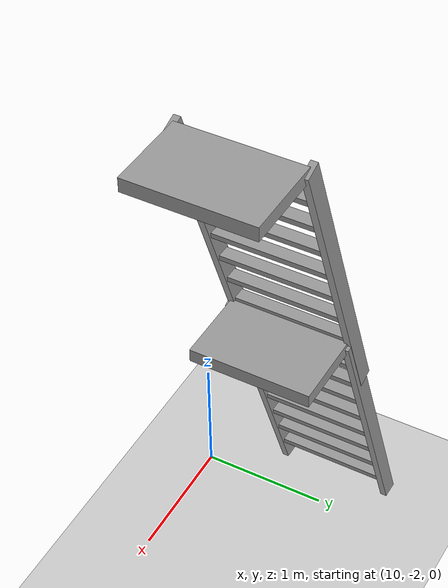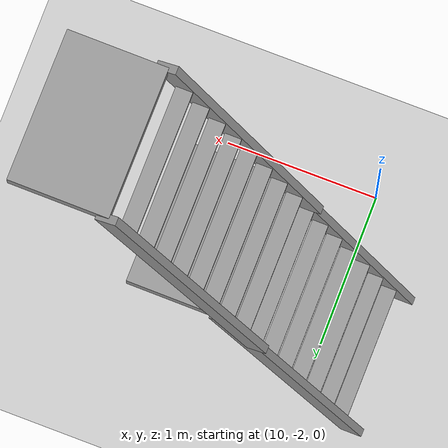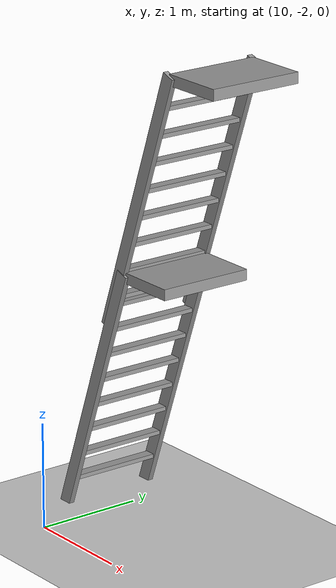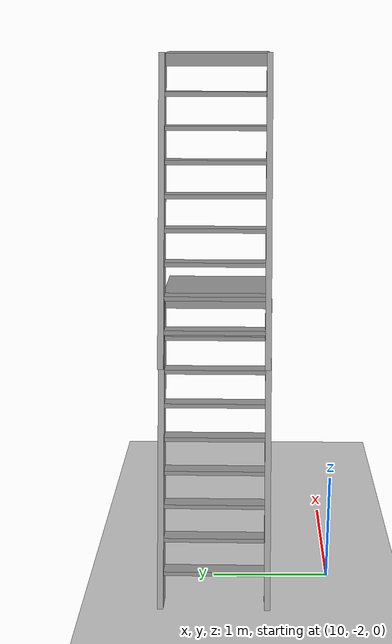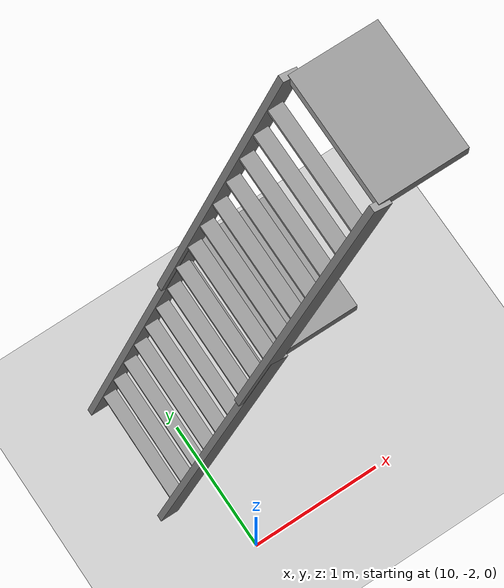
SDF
<sdf version="1.7">
 <world name="default">
  <model name="ground_plane">
   <static>1</static>
   <link name="link">
    <collision name="collision">
     <geometry><plane><normal>0 0 1</normal><size>100 100</size></plane></geometry>
     <surface>
      <contact><collide_bitmask>65535</collide_bitmask></contact>
      <friction><ode><mu>100</mu><mu2>50</mu2></ode></friction>
     </surface>
    </collision>
    <visual name="visual">
     <cast_shadows>0</cast_shadows>
     <geometry><plane><normal>0 0 1</normal><size>100 100</size></plane></geometry>
     <material>
      <script><uri>file://media/materials/scripts/gazebo.material</uri><name>Gazebo/Grey</name></script>
     </material>
    </visual>
   </link>
  </model>
  <model name="ladder_70deg_0rails_clone_0_clone">
   <static>1</static>
   <link name="step0">
    <pose>0 0.097059 0.266667 0 -0 0</pose>
    <inertial>
     <mass>9.75482</mass>
     <inertia>
      <ixx>0.00957124</ixx>
      <iyy>0.65963</iyy>
      <izz>0.666842</izz>
      <ixy>0</ixy>
      <ixz>0</ixz>
      <iyz>0</iyz>
     </inertia>
    </inertial>
    <collision name="collision"><geometry><box><size>0.9 0.1016 0.0381</size></box></geometry></collision>
    <visual name="visual">
     <geometry><box><size>0.9 0.1016 0.0381</size></box></geometry>
     <material>
      <script><uri>file://media/materials/scripts/gazebo.material</uri><name>Gazebo/Grey</name></script>
     </material>
    </visual>
   </link>
   <link name="step1">
    <pose>0 0.194117 0.533333 0 -0 0</pose>
    <inertial>
     <mass>9.75482</mass>
     <inertia>
      <ixx>0.00957124</ixx>
      <iyy>0.65963</iyy>
      <izz>0.666842</izz>
      <ixy>0</ixy>
      <ixz>0</ixz>
      <iyz>0</iyz>
     </inertia>
    </inertial>
    <collision name="collision"><geometry><box><size>0.9 0.1016 0.0381</size></box></geometry></collision>
    <visual name="visual">
     <geometry><box><size>0.9 0.1016 0.0381</size></box></geometry>
     <material>
      <script><uri>file://media/materials/scripts/gazebo.material</uri><name>Gazebo/Grey</name></script>
     </material>
    </visual>
   </link>
   <link name="step2">
    <pose>0 0.291176 0.8 0 -0 0</pose>
    <inertial>
     <mass>9.75482</mass>
     <inertia>
      <ixx>0.00957124</ixx>
      <iyy>0.65963</iyy>
      <izz>0.666842</izz>
      <ixy>0</ixy>
      <ixz>0</ixz>
      <iyz>0</iyz>
     </inertia>
    </inertial>
    <collision name="collision"><geometry><box><size>0.9 0.1016 0.0381</size></box></geometry></collision>
    <visual name="visual">
     <geometry><box><size>0.9 0.1016 0.0381</size></box></geometry>
     <material>
      <script><uri>file://media/materials/scripts/gazebo.material</uri><name>Gazebo/Grey</name></script>
     </material>
    </visual>
   </link>
   <link name="step3">
    <pose>0 0.388235 1.06667 0 -0 0</pose>
    <inertial>
     <mass>9.75482</mass>
     <inertia>
      <ixx>0.00957124</ixx>
      <iyy>0.65963</iyy>
      <izz>0.666842</izz>
      <ixy>0</ixy>
      <ixz>0</ixz>
      <iyz>0</iyz>
     </inertia>
    </inertial>
    <collision name="collision"><geometry><box><size>0.9 0.1016 0.0381</size></box></geometry></collision>
    <visual name="visual">
     <geometry><box><size>0.9 0.1016 0.0381</size></box></geometry>
     <material>
      <script><uri>file://media/materials/scripts/gazebo.material</uri><name>Gazebo/Grey</name></script>
     </material>
    </visual>
   </link>
   <link name="step4">
    <pose>0 0.485294 1.33333 0 -0 0</pose>
    <inertial>
     <mass>9.75482</mass>
     <inertia>
      <ixx>0.00957124</ixx>
      <iyy>0.65963</iyy>
      <izz>0.666842</izz>
      <ixy>0</ixy>
      <ixz>0</ixz>
      <iyz>0</iyz>
     </inertia>
    </inertial>
    <collision name="collision"><geometry><box><size>0.9 0.1016 0.0381</size></box></geometry></collision>
    <visual name="visual">
     <geometry><box><size>0.9 0.1016 0.0381</size></box></geometry>
     <material>
      <script><uri>file://media/materials/scripts/gazebo.material</uri><name>Gazebo/Grey</name></script>
     </material>
    </visual>
   </link>
   <link name="step5">
    <pose>0 0.582352 1.6 0 -0 0</pose>
    <inertial>
     <mass>9.75482</mass>
     <inertia>
      <ixx>0.00957124</ixx>
      <iyy>0.65963</iyy>
      <izz>0.666842</izz>
      <ixy>0</ixy>
      <ixz>0</ixz>
      <iyz>0</iyz>
     </inertia>
    </inertial>
    <collision name="collision"><geometry><box><size>0.9 0.1016 0.0381</size></box></geometry></collision>
    <visual name="visual">
     <geometry><box><size>0.9 0.1016 0.0381</size></box></geometry>
     <material>
      <script><uri>file://media/materials/scripts/gazebo.material</uri><name>Gazebo/Grey</name></script>
     </material>
    </visual>
   </link>
   <link name="step6">
    <pose>0 0.679411 1.86667 0 -0 0</pose>
    <inertial>
     <mass>9.75482</mass>
     <inertia>
      <ixx>0.00957124</ixx>
      <iyy>0.65963</iyy>
      <izz>0.666842</izz>
      <ixy>0</ixy>
      <ixz>0</ixz>
      <iyz>0</iyz>
     </inertia>
    </inertial>
    <collision name="collision"><geometry><box><size>0.9 0.1016 0.0381</size></box></geometry></collision>
    <visual name="visual">
     <geometry><box><size>0.9 0.1016 0.0381</size></box></geometry>
     <material>
      <script><uri>file://media/materials/scripts/gazebo.material</uri><name>Gazebo/Grey</name></script>
     </material>
    </visual>
   </link>
   <link name="step7">
    <pose>0 0.77647 2.13333 0 -0 0</pose>
    <inertial>
     <mass>9.75482</mass>
     <inertia>
      <ixx>0.00957124</ixx>
      <iyy>0.65963</iyy>
      <izz>0.666842</izz>
      <ixy>0</ixy>
      <ixz>0</ixz>
      <iyz>0</iyz>
     </inertia>
    </inertial>
    <collision name="collision"><geometry><box><size>0.9 0.1016 0.0381</size></box></geometry></collision>
    <visual name="visual">
     <geometry><box><size>0.9 0.1016 0.0381</size></box></geometry>
     <material>
      <script><uri>file://media/materials/scripts/gazebo.material</uri><name>Gazebo/Grey</name></script>
     </material>
    </visual>
   </link>
   <link name="landing">
    <pose>0 1.17353 2.4 0 -0 0</pose>
    <inertial>
     <mass>57.6072</mass>
     <inertia><ixx>1.73518</ixx><iyy>3.89545</iyy><izz>5.6167</izz><ixy>0</ixy><ixz>0</ixz><iyz>0</iyz></inertia>
    </inertial>
    <collision name="collision"><geometry><box><size>0.9 0.6 0.1016</size></box></geometry></collision>
    <visual name="visual">
     <geometry><box><size>0.9 0.6 0.1016</size></box></geometry>
     <material>
      <script><uri>file://media/materials/scripts/gazebo.material</uri><name>Gazebo/Grey</name></script>
     </material>
    </visual>
   </link>
   <link name="left_side_wall">
    <pose>-0.45 0.436764 1.2 1.22173 -0 0</pose>
    <collision name="collision"><geometry><box><size>0.0508 2.63403 0.13</size></box></geometry></collision>
    <visual name="visual">
     <geometry><box><size>0.0508 2.63403 0.13</size></box></geometry>
     <material>
      <script><uri>file://media/materials/scripts/gazebo.material</uri><name>Gazebo/Grey</name></script>
     </material>
    </visual>
   </link>
   <link name="right_side_wall">
    <pose>0.45 0.436764 1.2 1.22173 -0 0</pose>
    <collision name="collision"><geometry><box><size>0.0508 2.63403 0.13</size></box></geometry></collision>
    <visual name="visual">
     <geometry><box><size>0.0508 2.63403 0.13</size></box></geometry>
     <material>
      <script><uri>file://media/materials/scripts/gazebo.material</uri><name>Gazebo/Grey</name></script>
     </material>
    </visual>
   </link>
   <pose>9.61992 -1.0182 0 0 0 -1.5783</pose>
  </model>
  <model name="ladder_70deg_0rails_clone_1">
   <static>1</static>
   <link name="step0">
    <pose>0 0.097059 0.266667 0 -0 0</pose>
    <inertial>
     <mass>9.75482</mass>
     <inertia>
      <ixx>0.00957124</ixx>
      <iyy>0.65963</iyy>
      <izz>0.666842</izz>
      <ixy>0</ixy>
      <ixz>0</ixz>
      <iyz>0</iyz>
     </inertia>
    </inertial>
    <collision name="collision"><geometry><box><size>0.9 0.1016 0.0381</size></box></geometry></collision>
    <visual name="visual">
     <geometry><box><size>0.9 0.1016 0.0381</size></box></geometry>
     <material>
      <script><uri>file://media/materials/scripts/gazebo.material</uri><name>Gazebo/Grey</name></script>
     </material>
    </visual>
   </link>
   <link name="step1">
    <pose>0 0.194117 0.533333 0 -0 0</pose>
    <inertial>
     <mass>9.75482</mass>
     <inertia>
      <ixx>0.00957124</ixx>
      <iyy>0.65963</iyy>
      <izz>0.666842</izz>
      <ixy>0</ixy>
      <ixz>0</ixz>
      <iyz>0</iyz>
     </inertia>
    </inertial>
    <collision name="collision"><geometry><box><size>0.9 0.1016 0.0381</size></box></geometry></collision>
    <visual name="visual">
     <geometry><box><size>0.9 0.1016 0.0381</size></box></geometry>
     <material>
      <script><uri>file://media/materials/scripts/gazebo.material</uri><name>Gazebo/Grey</name></script>
     </material>
    </visual>
   </link>
   <link name="step2">
    <pose>0 0.291176 0.8 0 -0 0</pose>
    <inertial>
     <mass>9.75482</mass>
     <inertia>
      <ixx>0.00957124</ixx>
      <iyy>0.65963</iyy>
      <izz>0.666842</izz>
      <ixy>0</ixy>
      <ixz>0</ixz>
      <iyz>0</iyz>
     </inertia>
    </inertial>
    <collision name="collision"><geometry><box><size>0.9 0.1016 0.0381</size></box></geometry></collision>
    <visual name="visual">
     <geometry><box><size>0.9 0.1016 0.0381</size></box></geometry>
     <material>
      <script><uri>file://media/materials/scripts/gazebo.material</uri><name>Gazebo/Grey</name></script>
     </material>
    </visual>
   </link>
   <link name="step3">
    <pose>0 0.388235 1.06667 0 -0 0</pose>
    <inertial>
     <mass>9.75482</mass>
     <inertia>
      <ixx>0.00957124</ixx>
      <iyy>0.65963</iyy>
      <izz>0.666842</izz>
      <ixy>0</ixy>
      <ixz>0</ixz>
      <iyz>0</iyz>
     </inertia>
    </inertial>
    <collision name="collision"><geometry><box><size>0.9 0.1016 0.0381</size></box></geometry></collision>
    <visual name="visual">
     <geometry><box><size>0.9 0.1016 0.0381</size></box></geometry>
     <material>
      <script><uri>file://media/materials/scripts/gazebo.material</uri><name>Gazebo/Grey</name></script>
     </material>
    </visual>
   </link>
   <link name="step4">
    <pose>0 0.485294 1.33333 0 -0 0</pose>
    <inertial>
     <mass>9.75482</mass>
     <inertia>
      <ixx>0.00957124</ixx>
      <iyy>0.65963</iyy>
      <izz>0.666842</izz>
      <ixy>0</ixy>
      <ixz>0</ixz>
      <iyz>0</iyz>
     </inertia>
    </inertial>
    <collision name="collision"><geometry><box><size>0.9 0.1016 0.0381</size></box></geometry></collision>
    <visual name="visual">
     <geometry><box><size>0.9 0.1016 0.0381</size></box></geometry>
     <material>
      <script><uri>file://media/materials/scripts/gazebo.material</uri><name>Gazebo/Grey</name></script>
     </material>
    </visual>
   </link>
   <link name="step5">
    <pose>0 0.582352 1.6 0 -0 0</pose>
    <inertial>
     <mass>9.75482</mass>
     <inertia>
      <ixx>0.00957124</ixx>
      <iyy>0.65963</iyy>
      <izz>0.666842</izz>
      <ixy>0</ixy>
      <ixz>0</ixz>
      <iyz>0</iyz>
     </inertia>
    </inertial>
    <collision name="collision"><geometry><box><size>0.9 0.1016 0.0381</size></box></geometry></collision>
    <visual name="visual">
     <geometry><box><size>0.9 0.1016 0.0381</size></box></geometry>
     <material>
      <script><uri>file://media/materials/scripts/gazebo.material</uri><name>Gazebo/Grey</name></script>
     </material>
    </visual>
   </link>
   <link name="step6">
    <pose>0 0.679411 1.86667 0 -0 0</pose>
    <inertial>
     <mass>9.75482</mass>
     <inertia>
      <ixx>0.00957124</ixx>
      <iyy>0.65963</iyy>
      <izz>0.666842</izz>
      <ixy>0</ixy>
      <ixz>0</ixz>
      <iyz>0</iyz>
     </inertia>
    </inertial>
    <collision name="collision"><geometry><box><size>0.9 0.1016 0.0381</size></box></geometry></collision>
    <visual name="visual">
     <geometry><box><size>0.9 0.1016 0.0381</size></box></geometry>
     <material>
      <script><uri>file://media/materials/scripts/gazebo.material</uri><name>Gazebo/Grey</name></script>
     </material>
    </visual>
   </link>
   <link name="step7">
    <pose>0 0.77647 2.13333 0 -0 0</pose>
    <inertial>
     <mass>9.75482</mass>
     <inertia>
      <ixx>0.00957124</ixx>
      <iyy>0.65963</iyy>
      <izz>0.666842</izz>
      <ixy>0</ixy>
      <ixz>0</ixz>
      <iyz>0</iyz>
     </inertia>
    </inertial>
    <collision name="collision"><geometry><box><size>0.9 0.1016 0.0381</size></box></geometry></collision>
    <visual name="visual">
     <geometry><box><size>0.9 0.1016 0.0381</size></box></geometry>
     <material>
      <script><uri>file://media/materials/scripts/gazebo.material</uri><name>Gazebo/Grey</name></script>
     </material>
    </visual>
   </link>
   <link name="landing">
    <pose>0 1.17353 2.4 0 -0 0</pose>
    <inertial>
     <mass>57.6072</mass>
     <inertia><ixx>1.73518</ixx><iyy>3.89545</iyy><izz>5.6167</izz><ixy>0</ixy><ixz>0</ixz><iyz>0</iyz></inertia>
    </inertial>
    <collision name="collision"><geometry><box><size>0.9 0.6 0.1016</size></box></geometry></collision>
    <visual name="visual">
     <geometry><box><size>0.9 0.6 0.1016</size></box></geometry>
     <material>
      <script><uri>file://media/materials/scripts/gazebo.material</uri><name>Gazebo/Grey</name></script>
     </material>
    </visual>
   </link>
   <link name="left_side_wall">
    <pose>-0.45 0.436764 1.2 1.22173 -0 0</pose>
    <collision name="collision"><geometry><box><size>0.0508 2.63403 0.13</size></box></geometry></collision>
    <visual name="visual">
     <geometry><box><size>0.0508 2.63403 0.13</size></box></geometry>
     <material>
      <script><uri>file://media/materials/scripts/gazebo.material</uri><name>Gazebo/Grey</name></script>
     </material>
    </visual>
   </link>
   <link name="right_side_wall">
    <pose>0.45 0.436764 1.2 1.22173 -0 0</pose>
    <collision name="collision"><geometry><box><size>0.0508 2.63403 0.13</size></box></geometry></collision>
    <visual name="visual">
     <geometry><box><size>0.0508 2.63403 0.13</size></box></geometry>
     <material>
      <script><uri>file://media/materials/scripts/gazebo.material</uri><name>Gazebo/Grey</name></script>
     </material>
    </visual>
   </link>
   <pose>10.2797 -1.02063 1.92456 0 0 -1.5783</pose>
  </model>
 </world>
</sdf>
